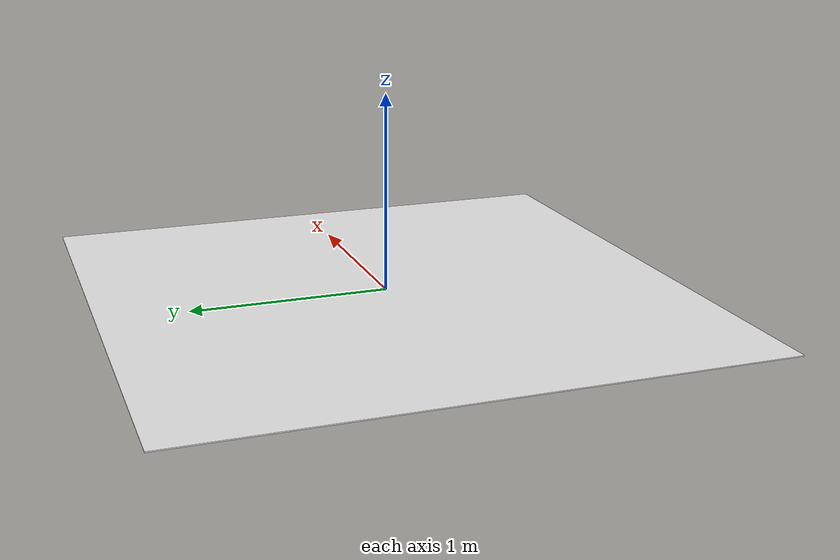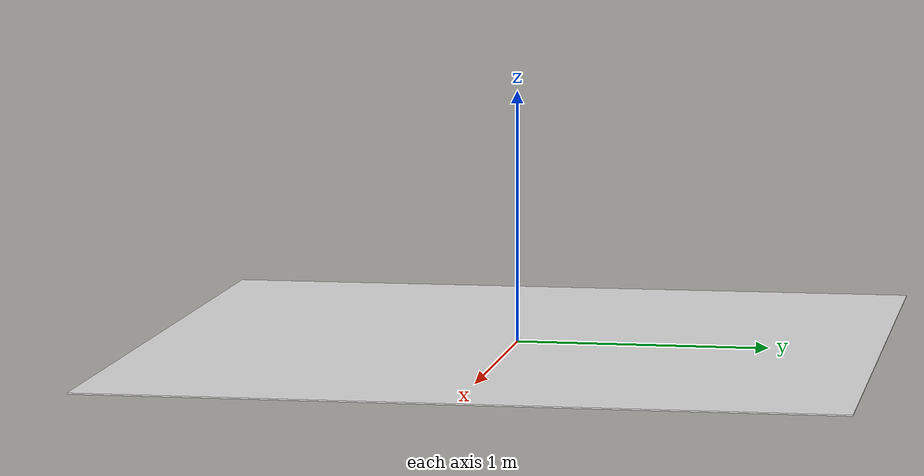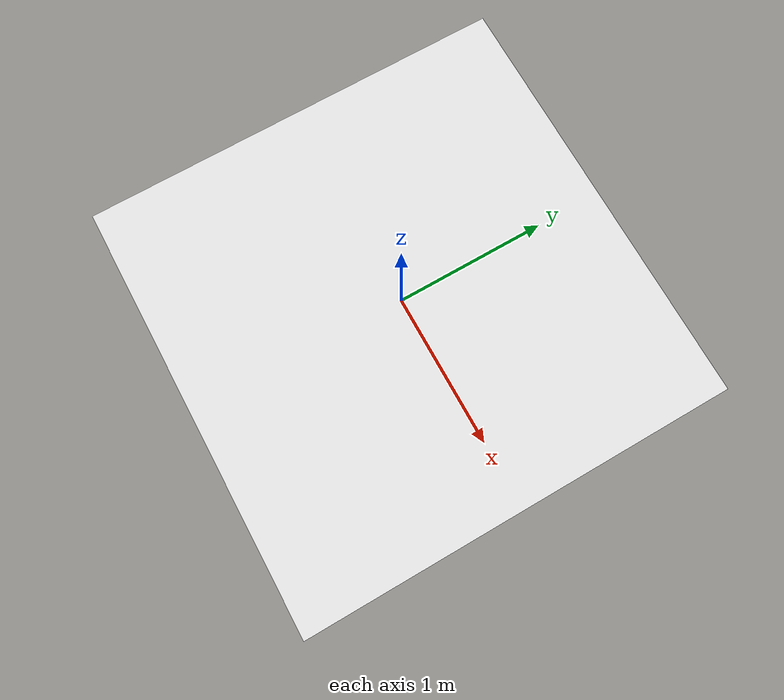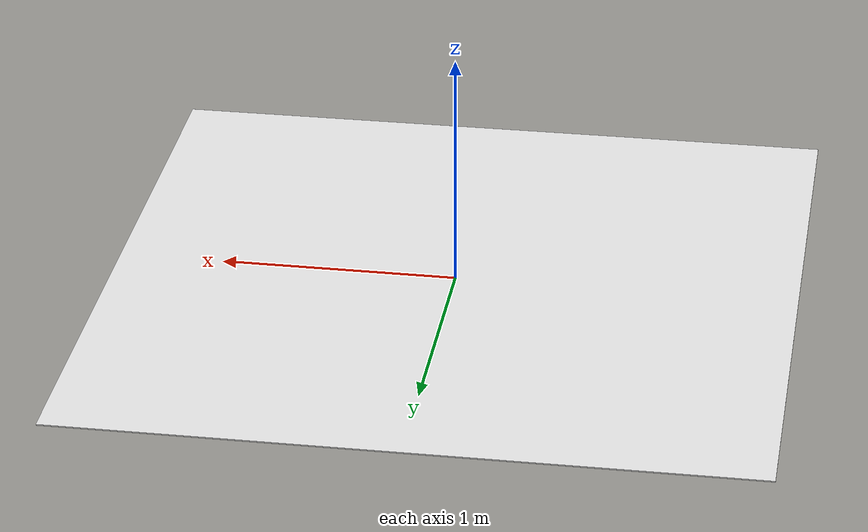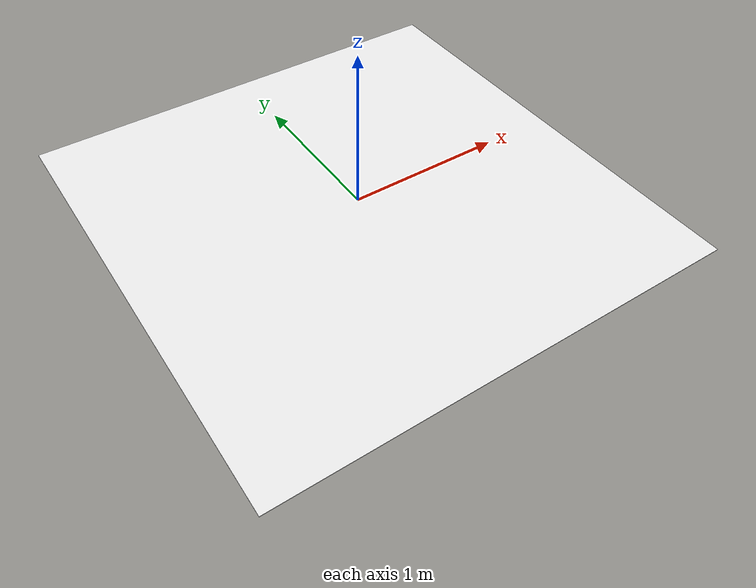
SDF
<?xml version='1.0'?>
<sdf version='1.6'>
  <model name='maze_base'>
    <link name='base'>
      <pose frame=''>0 0 0 0 0 0</pose>
      <inertial>
        <mass>1</mass>
        <inertia>
          <ixx>1.393944</ixx>
          <ixy>0</ixy>
          <ixz>0</ixz>
          <iyy>0.696972083</iyy>
          <iyz>0</iyz>
          <izz>0.696972803</izz>
        </inertia>
        <pose frame=''>0 0 0.05 0 0 0</pose>
      </inertial>
      <self_collide>0</self_collide>
      <kinematic>0</kinematic>
      <visual name='visual'>
        <pose frame=''>0 0 0.0025 0 0 0</pose>
        <geometry>
          <box>
            <size>2.892 2.892 0.005</size>
          </box>
        </geometry>
        <material>
          <script>
            <uri>file://media/materials/scripts/gazebo.material</uri>
            <name>Gazebo/White</name>
          </script>
        </material>
      </visual>
      <collision name='collision'>
        <pose frame=''>0 0 0.0025 0 0 0</pose>
        <geometry>
          <box>
            <size>2.892 2.892 0.005</size>
          </box>
        </geometry>
        <surface>
          <friction>
            <ode>
              <mu>1000</mu>
              <mu2>1000</mu2>
            </ode>
          </friction>
        </surface>
      </collision>
    </link>
  </model>
</sdf>
